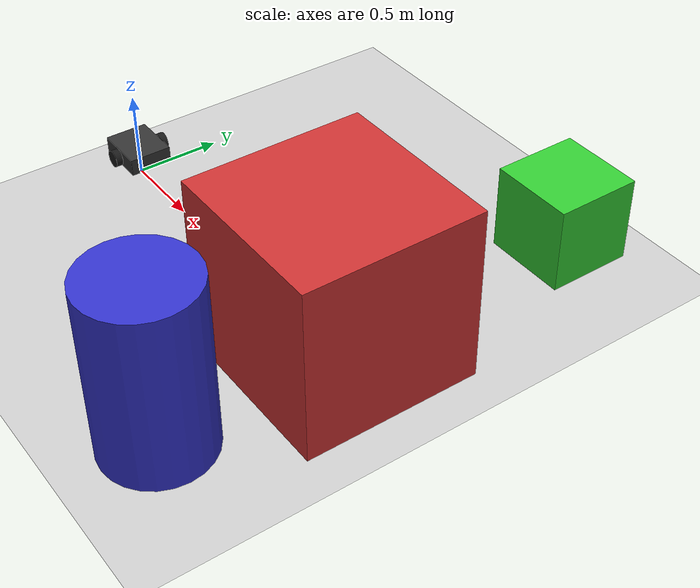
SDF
<?xml version="1.0"?>

<sdf version="1.6">
    <world name="depth_camera_world">
        <!-- sun light -->
        <include>
            <uri>model://sun</uri>
        </include>

        <!-- ground plane -->
        <include>
            <uri>model://ground_plane</uri>
        </include>

        <!-- Some objects to see -->
        <model name="red_box">
            <pose>2 0 0.5 0 0 0</pose>
            <static>true</static>
            <link name="link">
                <collision name="collision">
                    <geometry>
                        <box>
                            <size>1 1 1</size>
                        </box>
                    </geometry>
                </collision>
                <visual name="visual">
                    <geometry>
                        <box>
                            <size>1 1 1</size>
                        </box>
                    </geometry>
                    <material>
                        <ambient>0.8 0.2 0.2 1</ambient>
                        <diffuse>0.8 0.2 0.2 1</diffuse>
                    </material>
                </visual>
            </link>
        </model>
        <model name="green_box">
            <pose>2 1.5 0.25 0 0 0</pose>
            <static>true</static>
            <link name="link">
                <collision name="collision">
                    <geometry>
                        <box>
                            <size>0.5 0.5 0.5</size>
                        </box>
                    </geometry>
                </collision>
                <visual name="visual">
                    <geometry>
                        <box>
                            <size>0.5 0.5 0.5</size>
                        </box>
                    </geometry>
                    <material>
                        <ambient>0.2 0.8 0.2 1</ambient>
                        <diffuse>0.2 0.8 0.2 1</diffuse>
                    </material>
                </visual>
            </link>
        </model>
        <model name="blue_cylinder">
            <pose>2 -1 0.5 0 0 0</pose>
            <static>true</static>
            <link name="link">
                <collision name="collision">
                    <geometry>
                        <cylinder>
                            <radius>0.3</radius>
                            <length>1</length>
                        </cylinder>
                    </geometry>
                </collision>
                <visual name="visual">
                    <geometry>
                        <cylinder>
                            <radius>0.3</radius>
                            <length>1</length>
                        </cylinder>
                    </geometry>
                    <material>
                        <ambient>0.2 0.2 0.8 1</ambient>
                        <diffuse>0.2 0.2 0.8 1</diffuse>
                    </material>
                </visual>
            </link>
        </model>

        <!-- movalbe depth camera robot for point cloud -->
        <model name="camera_robot">
            <pose>0 0 0.1 0 0 0</pose>
            <static>false</static>

            <!-- main body -->
            <link name="base_link">
                <inertial>
                    <mass>5.0</mass>
                    <inertia>
                        <ixx>0.1</ixx>
                        <iyy>0.1</iyy>
                        <izz>0.1</izz>
                    </inertia>
                </inertial>
                <collision name="collision">
                    <pose>0 0 0.05 0 0 0</pose>
                    <geometry>
                        <box>
                            <size>0.3 0.25 0.1</size>
                        </box>
                    </geometry>
                </collision>
                <visual name="visual">
                    <pose>0 0 0.05 0 0 0</pose>
                    <geometry>
                        <box>
                            <size>0.3 0.25 0.1</size>
                        </box>
                    </geometry>
                    <material>
                        <ambient>0.2 0.2 0.2 1</ambient>
                    </material>
                </visual>
                <sensor name="depth_camera" type="depth">
                    <pose>0.15 0 0.1 0 0 0</pose>
                    <update_rate>10</update_rate>
                    <camera>
                        <horizontal_fov>1.047</horizontal_fov>
                        <image>
                            <width>640</width>
                            <height>480</height>
                            <format>R8G8B8</format>
                        </image>
                        <clip>
                            <near>0.1</near>
                            <far>10</far>
                        </clip>
                    </camera>
                    <plugin name="depth_camera_plugin" filename="libgazebo_ros_camera.so">
                        <ros>
                            <namespace>/camera</namespace>
                        </ros>
                        <camera_name>depth</camera_name>
                        <frame_name>camera_depth_optical_frame</frame_name>
                        <hack_baseline>0.07</hack_baseline>
                        <min_depth>0.1</min_depth>
                        <max_depth>10.0</max_depth>
                    </plugin>
                </sensor>
            </link>
            <!-- left wheel -->
            <link name="left_wheel">
                <pose>0 0.15 0.05 -1.5708 0 0</pose>
                <inertial>
                    <mass>0.5</mass>
                    <inertia>
                        <ixx>0.001</ixx>
                        <iyy>0.001</iyy>
                        <izz>0.001</izz>
                    </inertia>
                </inertial>
                <collision name="collision">
                    <geometry>
                        <cylinder>
                            <radius>0.05</radius>
                            <length>0.04</length>
                        </cylinder>
                    </geometry>
                    <surface>
                        <friction>
                            <ode>
                                <mu>1.0</mu>
                                <mu2>1.0</mu2>
                            </ode>
                        </friction>
                    </surface>
                </collision>
                <visual name="visual">
                    <geometry>
                        <cylinder>
                            <radius>0.05</radius>
                            <length>0.04</length>
                        </cylinder>
                    </geometry>
                    <material>
                        <ambient>0.1 0.1 0.1 1</ambient>
                    </material>
                </visual>
            </link>
            <!-- Right wheel -->
            <link name="right_wheel">
                <pose>0 -0.15 0.05 -1.5708 0 0</pose>
                <inertial>
                    <mass>0.5</mass>
                    <inertia>
                        <ixx>0.001</ixx>
                        <iyy>0.001</iyy>
                        <izz>0.001</izz>
                    </inertia>
                </inertial>
                <collision name="collision">
                    <geometry>
                        <cylinder>
                            <radius>0.05</radius>
                            <length>0.04</length>
                        </cylinder>
                    </geometry>
                    <surface>
                        <friction>
                            <ode>
                                <mu>1.0</mu>
                                <mu2>1.0</mu2>
                            </ode>
                        </friction>
                    </surface>
                </collision>
                <visual name="visual">
                    <geometry>
                        <cylinder>
                            <radius>0.05</radius>
                            <length>0.04</length>
                        </cylinder>
                    </geometry>
                    <material>
                        <ambient>0.1 0.1 0.1 1</ambient>
                    </material>
                </visual>
            </link>
            <!-- caster (rear support) -->
            <link name="caster">
                <pose>-0.12 0 0.025 0 0 0</pose>
                <inertial>
                    <mass>0.1</mass>
                    <inertia>
                        <ixx>0.001</ixx>
                        <iyy>0.001</iyy>
                        <izz>0.001</izz>
                    </inertia>
                </inertial>
                <collision name="collision">
                    <geometry>
                        <sphere>
                            <radius>0.025</radius>
                        </sphere>
                    </geometry>
                    <surface>
                        <friction>
                            <ode>
                                <mu>0.0</mu>
                                <mu2>0.0</mu2>
                            </ode>
                        </friction>
                    </surface>
                </collision>
                <visual name="visual">
                    <geometry>
                        <sphere>
                            <radius>0.025</radius>
                        </sphere>
                    </geometry>
                    <material>
                        <ambient>0.3 0.3 0.3 1</ambient>
                    </material>
                </visual>
            </link>

            <!-- joints -->
            <joint name="left_wheel_joint" type="revolute">
                <parent>base_link</parent>
                <child>left_wheel</child>
                <axia>
                    <xyz>0 0 1</xyz>
                </axia>
            </joint>
            <joint name="right_wheel_joint" type="revolute">
                <parent>base_link</parent>
                <child>right_wheel</child>
                <axia>
                    <xyz>0 0 1</xyz>
                </axia>
            </joint>
            <joint name="caster_joint" type="ball">
                <parent>base_link</parent>
                <child>caster</child>
            </joint>
            <plugin name="diff_drive" filename="libgazebo_ros_diff_drive.so">
                <ros>
                    <namespace>/camera_robot</namespace>
                </ros>
                <update_rate>50</update_rate>
                <left_joint>left_wheel_joint</left_joint>
                <right_joint>right_wheel_joint</right_joint>
                <wheel_separation>0.3</wheel_separation>
                <wheel_diameter>0.1</wheel_diameter>
                <max_wheel_torgue>20</max_wheel_torgue>
                <max_wheel_acceleration>1.0</max_wheel_acceleration>
                <command_topic>cmd_vel</command_topic>
                <publish_odom>true</publish_odom>
                <publish_odom_tf>true</publish_odom_tf>
                <odometry_frame>odom</odometry_frame>
                <robot_base_frame>base_link</robot_base_frame>
            </plugin>
        </model>
    </world>
</sdf>
